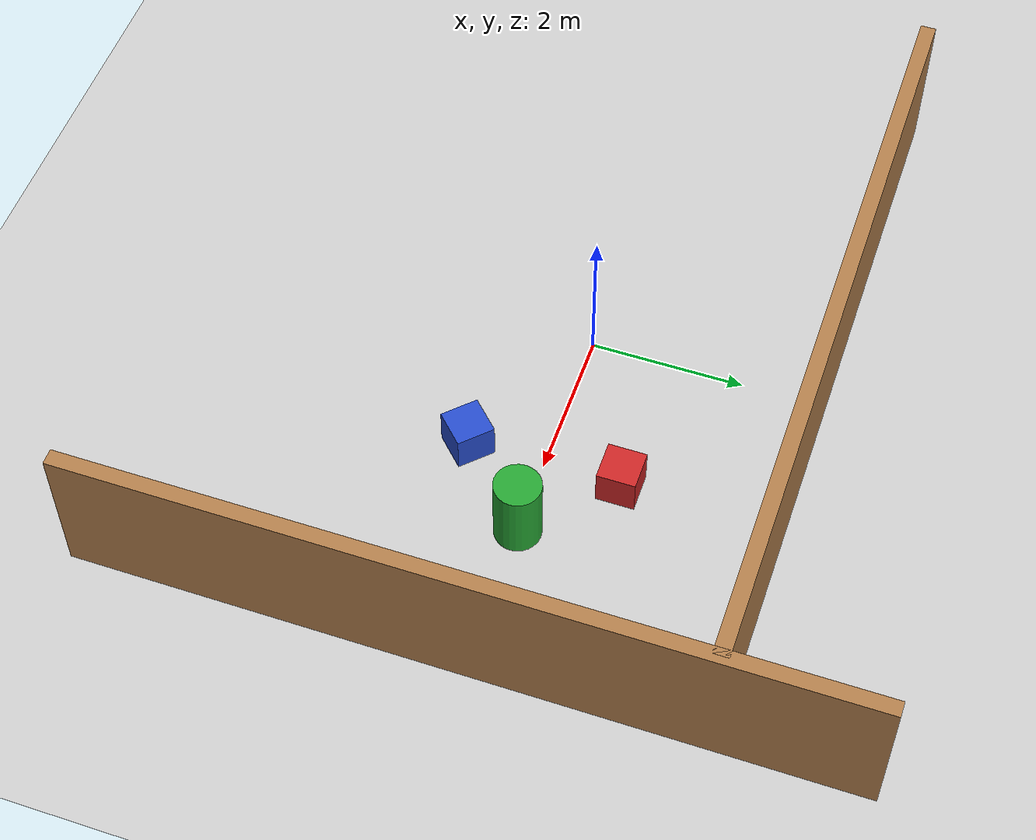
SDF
<?xml version="1.0"?>
<sdf version="1.6">
  <world name="test_environment">

    <!-- Include physics from empty_world -->
    <physics type="ode">
      <max_step_size>0.001</max_step_size>
      <real_time_factor>1.0</real_time_factor>
      <real_time_update_rate>1000</real_time_update_rate>
      <gravity>0 0 -9.81</gravity>
      <ode>
        <solver>
          <type>quick</type>
          <iters>50</iters>
          <sor>1.3</sor>
        </solver>
        <constraints>
          <cfm>0.0</cfm>
          <erp>0.2</erp>
          <contact_max_correcting_vel>100.0</contact_max_correcting_vel>
          <contact_surface_layer>0.001</contact_surface_layer>
        </constraints>
      </ode>
    </physics>

    <!-- Sun lighting -->
    <light name="sun" type="directional">
      <cast_shadows>true</cast_shadows>
      <pose>0 0 10 0 0 0</pose>
      <diffuse>0.8 0.8 0.8 1</diffuse>
      <specular>0.2 0.2 0.2 1</specular>
      <attenuation>
        <range>1000</range>
        <constant>0.9</constant>
        <linear>0.01</linear>
        <quadratic>0.001</quadratic>
      </attenuation>
      <direction>-0.5 0.1 -0.9</direction>
    </light>

    <!-- Ground plane -->
    <model name="ground_plane">
      <static>true</static>
      <link name="link">
        <collision name="collision">
          <geometry>
            <plane>
              <normal>0 0 1</normal>
              <size>100 100</size>
            </plane>
          </geometry>
          <surface>
            <friction>
              <ode>
                <mu>0.8</mu>
                <mu2>0.8</mu2>
              </ode>
            </friction>
          </surface>
        </collision>
        <visual name="visual">
          <cast_shadows>false</cast_shadows>
          <geometry>
            <plane>
              <normal>0 0 1</normal>
              <size>100 100</size>
            </plane>
          </geometry>
          <material>
            <script>
              <uri>file://media/materials/scripts/gazebo.material</uri>
              <name>Gazebo/Grey</name>
            </script>
          </material>
        </visual>
      </link>
    </model>

    <!-- OBSTACLES FOR SENSOR TESTING                  -->

    <!-- Wall 1: Front (for LiDAR max range testing) -->
    <model name="wall_front">
      <static>true</static>
      <pose>5 0 1 0 0 0</pose>  <!-- 5m in front, 2m tall -->
      <link name="link">
        <collision name="collision">
          <geometry>
            <box>
              <size>0.2 10 2</size>  <!-- Thin wall, 10m wide, 2m tall -->
            </box>
          </geometry>
        </collision>
        <visual name="visual">
          <geometry>
            <box>
              <size>0.2 10 2</size>
            </box>
          </geometry>
          <material>
            <script>
              <uri>file://media/materials/scripts/gazebo.material</uri>
              <name>Gazebo/Wood</name>
            </script>
          </material>
        </visual>
      </link>
    </model>

    <!-- Wall 2: Left (for side scanning) -->
    <model name="wall_left">
      <static>true</static>
      <pose>0 3 1 0 0 0</pose>
      <link name="link">
        <collision name="collision">
          <geometry>
            <box>
              <size>10 0.2 2</size>
            </box>
          </geometry>
        </collision>
        <visual name="visual">
          <geometry>
            <box>
              <size>10 0.2 2</size>
            </box>
          </geometry>
          <material>
            <script>
              <uri>file://media/materials/scripts/gazebo.material</uri>
              <name>Gazebo/Wood</name>
            </script>
          </material>
        </visual>
      </link>
    </model>

    <!-- Box obstacle 1 (for collision testing) -->
    <model name="box_obstacle_1">
      <static>true</static>
      <pose>2 1 0.25 0 0 0</pose>  <!-- 2m forward, 1m left, 0.5m tall box -->
      <link name="link">
        <collision name="collision">
          <geometry>
            <box>
              <size>0.5 0.5 0.5</size>
            </box>
          </geometry>
        </collision>
        <visual name="visual">
          <geometry>
            <box>
              <size>0.5 0.5 0.5</size>
            </box>
          </geometry>
          <material>
            <script>
              <uri>file://media/materials/scripts/gazebo.material</uri>
              <name>Gazebo/Red</name>
            </script>
          </material>
        </visual>
      </link>
    </model>

    <!-- Box obstacle 2 -->
    <model name="box_obstacle_2">
      <static>true</static>
      <pose>2 -1 0.25 0 0 0.785</pose>  <!-- Rotated 45° -->
      <link name="link">
        <collision name="collision">
          <geometry>
            <box>
              <size>0.5 0.5 0.5</size>
            </box>
          </geometry>
        </collision>
        <visual name="visual">
          <geometry>
            <box>
              <size>0.5 0.5 0.5</size>
            </box>
          </geometry>
          <material>
            <script>
              <uri>file://media/materials/scripts/gazebo.material</uri>
              <name>Gazebo/Blue</name>
            </script>
          </material>
        </visual>
      </link>
    </model>

    <!-- Cylinder obstacle (for curved surface scanning) -->
    <model name="cylinder_obstacle">
      <static>true</static>
      <pose>3 0 0.5 0 0 0</pose>
      <link name="link">
        <collision name="collision">
          <geometry>
            <cylinder>
              <radius>0.3</radius>
              <length>1.0</length>
            </cylinder>
          </geometry>
        </collision>
        <visual name="visual">
          <geometry>
            <cylinder>
              <radius>0.3</radius>
              <length>1.0</length>
            </cylinder>
          </geometry>
          <material>
            <script>
              <uri>file://media/materials/scripts/gazebo.material</uri>
              <name>Gazebo/Green</name>
            </script>
          </material>
        </visual>
      </link>
    </model>

    <!-- GUI settings -->
    <gui fullscreen='0'>
      <camera name='user_camera'>
        <pose>8 -8 4 0 0.4 2.35</pose>
        <view_controller>orbit</view_controller>
      </camera>
    </gui>

  </world>
</sdf>
